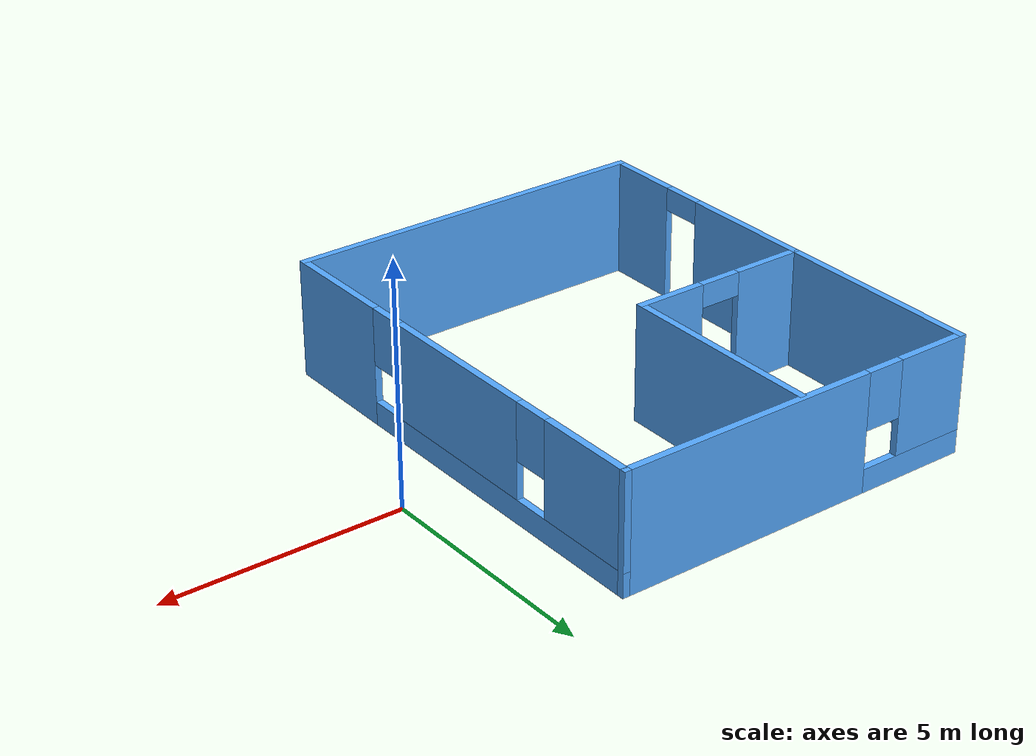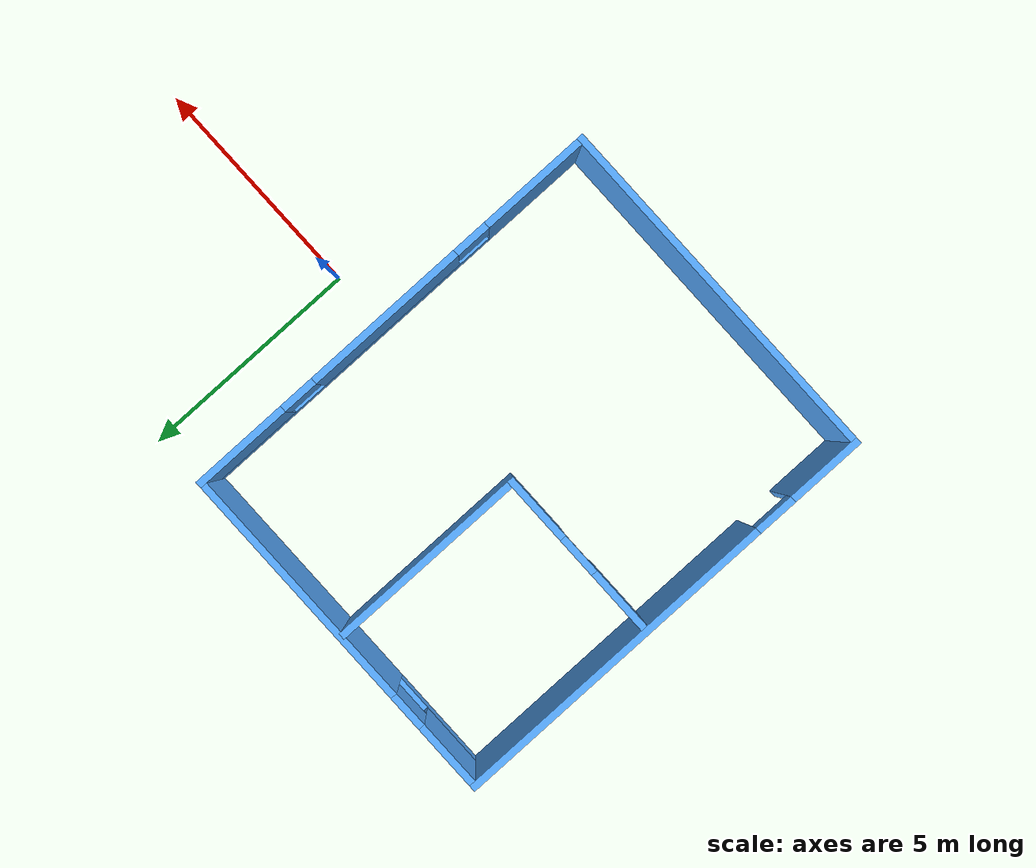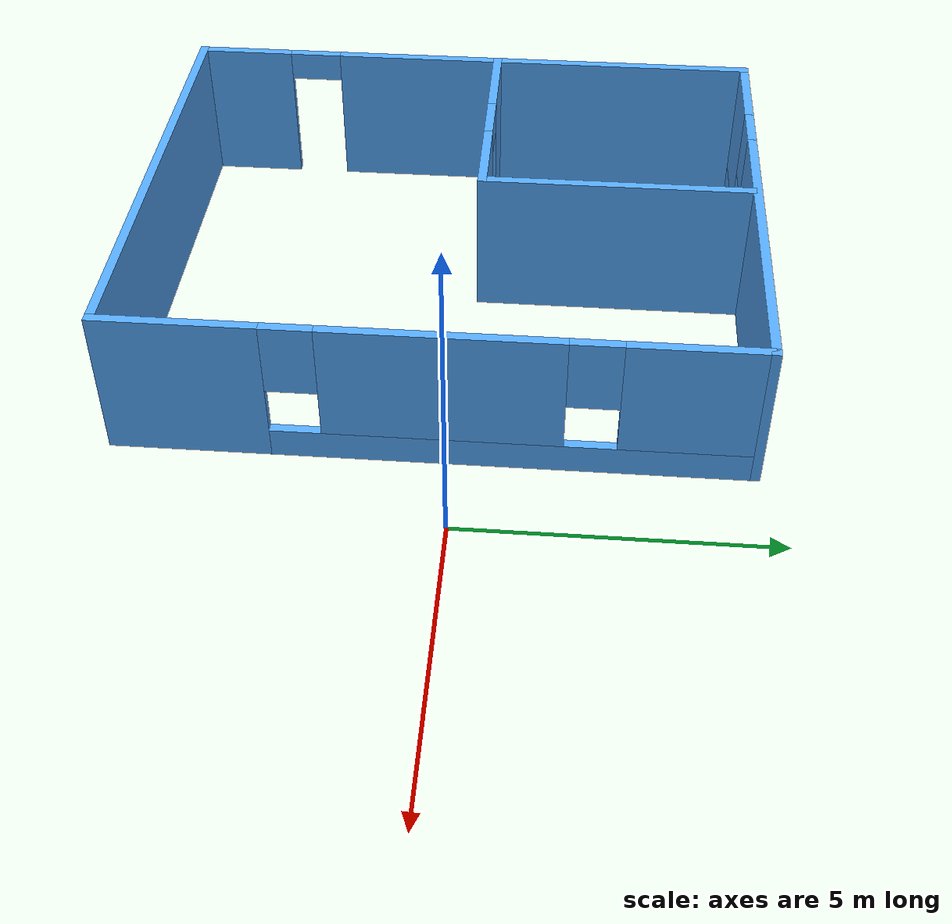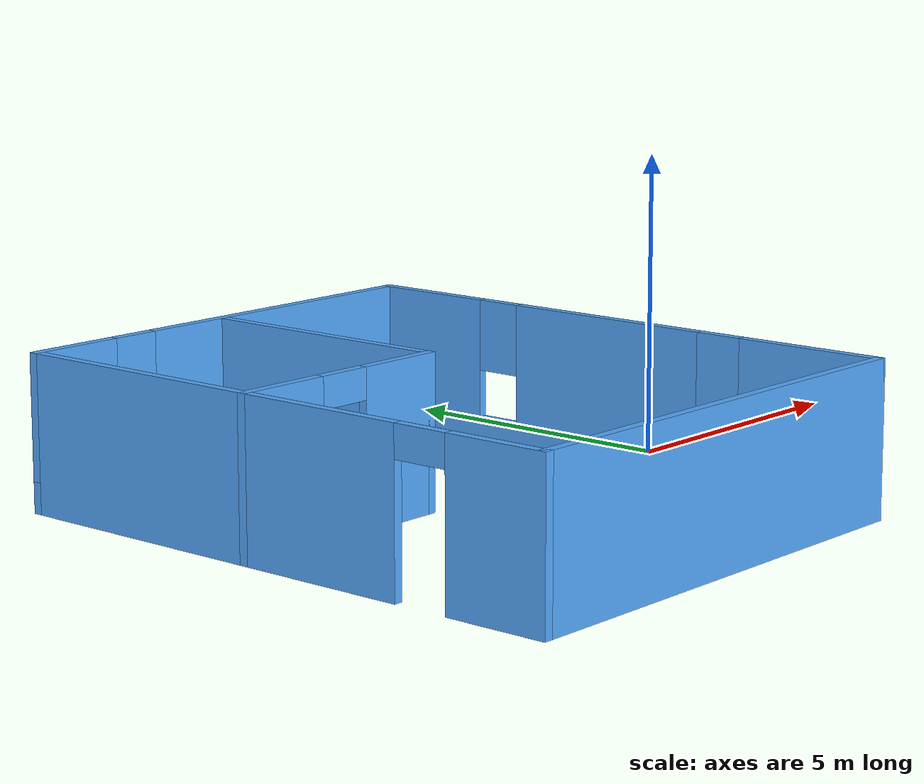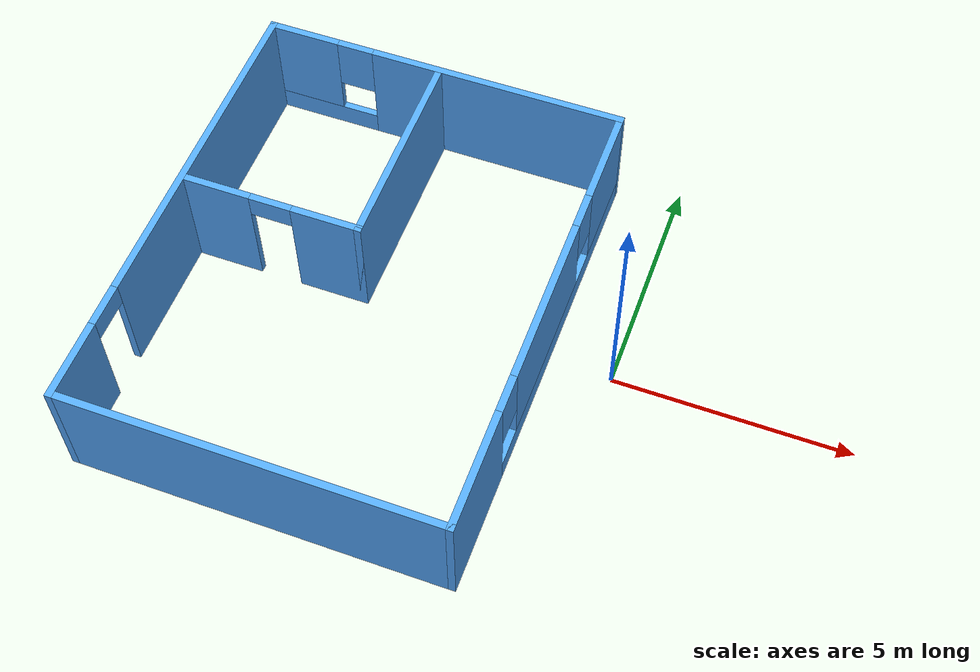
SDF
<?xml version='1.0'?>
<sdf version='1.6'>
  <model name='mybuilding'>
    <pose frame=''>-5.33513 -0.361221 0 0 -0 0</pose>
    <link name='Wall_0'>
      <pose frame=''>-3.925 0 0 0 0 -1.5708</pose>
      <visual name='Wall_0_Visual_0'>
        <pose frame=''>-1.29935 0 1.25 0 -0 0</pose>
        <geometry>
          <box>
            <size>7.4013 0.15 2.5</size>
          </box>
        </geometry>
        <material>
          <script>
            <uri>file://media/materials/scripts/gazebo.material</uri>
            <name>Gazebo/Grey</name>
          </script>
          <ambient>0.333333 0.666667 1 1</ambient>
        </material>
        <meta>
          <layer>0</layer>
        </meta>
      </visual>
      <collision name='Wall_0_Collision_0'>
        <geometry>
          <box>
            <size>7.4013 0.15 2.5</size>
          </box>
        </geometry>
        <pose frame=''>-1.29935 0 1.25 0 -0 0</pose>
      </collision>
      <visual name='Wall_0_Visual_1'>
        <pose frame=''>4.15065 0 1.25 0 -0 0</pose>
        <geometry>
          <box>
            <size>1.6987 0.15 2.5</size>
          </box>
        </geometry>
        <material>
          <script>
            <uri>file://media/materials/scripts/gazebo.material</uri>
            <name>Gazebo/Grey</name>
          </script>
          <ambient>0.333333 0.666667 1 1</ambient>
        </material>
        <meta>
          <layer>0</layer>
        </meta>
      </visual>
      <collision name='Wall_0_Collision_1'>
        <geometry>
          <box>
            <size>1.6987 0.15 2.5</size>
          </box>
        </geometry>
        <pose frame=''>4.15065 0 1.25 0 -0 0</pose>
      </collision>
      <visual name='Wall_0_Visual_2'>
        <pose frame=''>2.8513 0 2.25 0 -0 0</pose>
        <geometry>
          <box>
            <size>0.9 0.15 0.5</size>
          </box>
        </geometry>
        <material>
          <script>
            <uri>file://media/materials/scripts/gazebo.material</uri>
            <name>Gazebo/Grey</name>
          </script>
          <ambient>0.333333 0.666667 1 1</ambient>
        </material>
        <meta>
          <layer>0</layer>
        </meta>
      </visual>
      <collision name='Wall_0_Collision_2'>
        <geometry>
          <box>
            <size>0.9 0.15 0.5</size>
          </box>
        </geometry>
        <pose frame=''>2.8513 0 2.25 0 -0 0</pose>
      </collision>
    </link>
    <link name='Wall_1'>
      <collision name='Wall_1_Collision'>
        <geometry>
          <box>
            <size>8 0.15 2.5</size>
          </box>
        </geometry>
        <pose frame=''>0 0 1.25 0 -0 0</pose>
      </collision>
      <visual name='Wall_1_Visual'>
        <pose frame=''>0 0 1.25 0 -0 0</pose>
        <geometry>
          <box>
            <size>8 0.15 2.5</size>
          </box>
        </geometry>
        <material>
          <script>
            <uri>file://media/materials/scripts/gazebo.material</uri>
            <name>Gazebo/Grey</name>
          </script>
          <ambient>0.333333 0.666667 1 1</ambient>
        </material>
        <meta>
          <layer>0</layer>
        </meta>
      </visual>
      <pose frame=''>0 -4.925 0 0 -0 0</pose>
    </link>
    <link name='Wall_11'>
      <pose frame=''>-2 0.4814 0 0 -0 0</pose>
      <visual name='Wall_11_Visual_0'>
        <pose frame=''>-1.20885 0 1.25 0 -0 0</pose>
        <geometry>
          <box>
            <size>1.5823 0.15 2.5</size>
          </box>
        </geometry>
        <material>
          <script>
            <uri>file://media/materials/scripts/gazebo.material</uri>
            <name>Gazebo/Grey</name>
          </script>
          <ambient>0.333333 0.666667 1 1</ambient>
        </material>
        <meta>
          <layer>0</layer>
        </meta>
      </visual>
      <collision name='Wall_11_Collision_0'>
        <geometry>
          <box>
            <size>1.5823 0.15 2.5</size>
          </box>
        </geometry>
        <pose frame=''>-1.20885 0 1.25 0 -0 0</pose>
      </collision>
      <visual name='Wall_11_Visual_1'>
        <pose frame=''>1.24115 0 1.25 0 -0 0</pose>
        <geometry>
          <box>
            <size>1.5177 0.15 2.5</size>
          </box>
        </geometry>
        <material>
          <script>
            <uri>file://media/materials/scripts/gazebo.material</uri>
            <name>Gazebo/Grey</name>
          </script>
          <ambient>0.333333 0.666667 1 1</ambient>
        </material>
        <meta>
          <layer>0</layer>
        </meta>
      </visual>
      <collision name='Wall_11_Collision_1'>
        <geometry>
          <box>
            <size>1.5177 0.15 2.5</size>
          </box>
        </geometry>
        <pose frame=''>1.24115 0 1.25 0 -0 0</pose>
      </collision>
      <visual name='Wall_11_Visual_2'>
        <pose frame=''>0.0323 0 2.25 0 -0 0</pose>
        <geometry>
          <box>
            <size>0.9 0.15 0.5</size>
          </box>
        </geometry>
        <material>
          <script>
            <uri>file://media/materials/scripts/gazebo.material</uri>
            <name>Gazebo/Grey</name>
          </script>
          <ambient>0.333333 0.666667 1 1</ambient>
        </material>
        <meta>
          <layer>0</layer>
        </meta>
      </visual>
      <collision name='Wall_11_Collision_2'>
        <geometry>
          <box>
            <size>0.9 0.15 0.5</size>
          </box>
        </geometry>
        <pose frame=''>0.0323 0 2.25 0 -0 0</pose>
      </collision>
    </link>
    <link name='Wall_12'>
      <collision name='Wall_12_Collision'>
        <geometry>
          <box>
            <size>4.5 0.15 2.5</size>
          </box>
        </geometry>
        <pose frame=''>0 0 1.25 0 -0 0</pose>
      </collision>
      <visual name='Wall_12_Visual'>
        <pose frame=''>0 0 1.25 0 -0 0</pose>
        <geometry>
          <box>
            <size>4.5 0.15 2.5</size>
          </box>
        </geometry>
        <material>
          <script>
            <uri>file://media/materials/scripts/gazebo.material</uri>
            <name>Gazebo/Grey</name>
          </script>
          <ambient>0.333333 0.666667 1 1</ambient>
        </material>
        <meta>
          <layer>0</layer>
        </meta>
      </visual>
      <pose frame=''>-0.075 2.6564 0 0 -0 1.5708</pose>
    </link>
    <link name='Wall_2'>
      <pose frame=''>3.925 0 0 0 -0 1.5708</pose>
      <visual name='Wall_2_Visual_0'>
        <pose frame=''>-3.7289 0 1.25 0 -0 0</pose>
        <geometry>
          <box>
            <size>2.5422 0.15 2.5</size>
          </box>
        </geometry>
        <material>
          <script>
            <uri>file://media/materials/scripts/gazebo.material</uri>
            <name>Gazebo/Grey</name>
          </script>
          <ambient>0.333333 0.666667 1 1</ambient>
        </material>
        <meta>
          <layer>0</layer>
        </meta>
      </visual>
      <collision name='Wall_2_Collision_0'>
        <geometry>
          <box>
            <size>2.5422 0.15 2.5</size>
          </box>
        </geometry>
        <pose frame=''>-3.7289 0 1.25 0 -0 0</pose>
      </collision>
      <visual name='Wall_2_Visual_1'>
        <pose frame=''>1.2711 0 0.25 0 -0 0</pose>
        <geometry>
          <box>
            <size>7.4578 0.15 0.5</size>
          </box>
        </geometry>
        <material>
          <script>
            <uri>file://media/materials/scripts/gazebo.material</uri>
            <name>Gazebo/Grey</name>
          </script>
          <ambient>0.333333 0.666667 1 1</ambient>
        </material>
        <meta>
          <layer>0</layer>
        </meta>
      </visual>
      <collision name='Wall_2_Collision_1'>
        <geometry>
          <box>
            <size>7.4578 0.15 0.5</size>
          </box>
        </geometry>
        <pose frame=''>1.2711 0 0.25 0 -0 0</pose>
      </collision>
      <visual name='Wall_2_Visual_2'>
        <pose frame=''>0.177225 0 1.5 0 -0 0</pose>
        <geometry>
          <box>
            <size>3.67005 0.15 2</size>
          </box>
        </geometry>
        <material>
          <script>
            <uri>file://media/materials/scripts/gazebo.material</uri>
            <name>Gazebo/Grey</name>
          </script>
          <ambient>0.333333 0.666667 1 1</ambient>
        </material>
        <meta>
          <layer>0</layer>
        </meta>
      </visual>
      <collision name='Wall_2_Collision_2'>
        <geometry>
          <box>
            <size>3.67005 0.15 2</size>
          </box>
        </geometry>
        <pose frame=''>0.177225 0 1.5 0 -0 0</pose>
      </collision>
      <visual name='Wall_2_Visual_3'>
        <pose frame=''>3.90612 0 1.5 0 -0 0</pose>
        <geometry>
          <box>
            <size>2.18775 0.15 2</size>
          </box>
        </geometry>
        <material>
          <script>
            <uri>file://media/materials/scripts/gazebo.material</uri>
            <name>Gazebo/Grey</name>
          </script>
          <ambient>0.333333 0.666667 1 1</ambient>
        </material>
        <meta>
          <layer>0</layer>
        </meta>
      </visual>
      <collision name='Wall_2_Collision_3'>
        <geometry>
          <box>
            <size>2.18775 0.15 2</size>
          </box>
        </geometry>
        <pose frame=''>3.90612 0 1.5 0 -0 0</pose>
      </collision>
      <visual name='Wall_2_Visual_4'>
        <pose frame=''>-2.0578 0 1.9 0 -0 0</pose>
        <geometry>
          <box>
            <size>0.8 0.15 1.2</size>
          </box>
        </geometry>
        <material>
          <script>
            <uri>file://media/materials/scripts/gazebo.material</uri>
            <name>Gazebo/Grey</name>
          </script>
          <ambient>0.333333 0.666667 1 1</ambient>
        </material>
        <meta>
          <layer>0</layer>
        </meta>
      </visual>
      <collision name='Wall_2_Collision_4'>
        <geometry>
          <box>
            <size>0.8 0.15 1.2</size>
          </box>
        </geometry>
        <pose frame=''>-2.0578 0 1.9 0 -0 0</pose>
      </collision>
      <visual name='Wall_2_Visual_5'>
        <pose frame=''>2.41225 0 1.9 0 -0 0</pose>
        <geometry>
          <box>
            <size>0.8 0.15 1.2</size>
          </box>
        </geometry>
        <material>
          <script>
            <uri>file://media/materials/scripts/gazebo.material</uri>
            <name>Gazebo/Grey</name>
          </script>
          <ambient>0.333333 0.666667 1 1</ambient>
        </material>
        <meta>
          <layer>0</layer>
        </meta>
      </visual>
      <collision name='Wall_2_Collision_5'>
        <geometry>
          <box>
            <size>0.8 0.15 1.2</size>
          </box>
        </geometry>
        <pose frame=''>2.41225 0 1.9 0 -0 0</pose>
      </collision>
    </link>
    <link name='Wall_3'>
      <pose frame=''>0 4.925 0 0 -0 3.14159</pose>
      <visual name='Wall_3_Visual_0'>
        <pose frame=''>-1.20293 0 1.25 0 -0 0</pose>
        <geometry>
          <box>
            <size>5.59415 0.15 2.5</size>
          </box>
        </geometry>
        <material>
          <script>
            <uri>file://media/materials/scripts/gazebo.material</uri>
            <name>Gazebo/Grey</name>
          </script>
          <ambient>0.333333 0.666667 1 1</ambient>
        </material>
        <meta>
          <layer>0</layer>
        </meta>
      </visual>
      <collision name='Wall_3_Collision_0'>
        <geometry>
          <box>
            <size>5.59415 0.15 2.5</size>
          </box>
        </geometry>
        <pose frame=''>-1.20293 0 1.25 0 -0 0</pose>
      </collision>
      <visual name='Wall_3_Visual_1'>
        <pose frame=''>2.79707 0 0.25 0 -0 0</pose>
        <geometry>
          <box>
            <size>2.40585 0.15 0.5</size>
          </box>
        </geometry>
        <material>
          <script>
            <uri>file://media/materials/scripts/gazebo.material</uri>
            <name>Gazebo/Grey</name>
          </script>
          <ambient>0.333333 0.666667 1 1</ambient>
        </material>
        <meta>
          <layer>0</layer>
        </meta>
      </visual>
      <collision name='Wall_3_Collision_1'>
        <geometry>
          <box>
            <size>2.40585 0.15 0.5</size>
          </box>
        </geometry>
        <pose frame=''>2.79707 0 0.25 0 -0 0</pose>
      </collision>
      <visual name='Wall_3_Visual_2'>
        <pose frame=''>3.19707 0 1.5 0 -0 0</pose>
        <geometry>
          <box>
            <size>1.60585 0.15 2</size>
          </box>
        </geometry>
        <material>
          <script>
            <uri>file://media/materials/scripts/gazebo.material</uri>
            <name>Gazebo/Grey</name>
          </script>
          <ambient>0.333333 0.666667 1 1</ambient>
        </material>
        <meta>
          <layer>0</layer>
        </meta>
      </visual>
      <collision name='Wall_3_Collision_2'>
        <geometry>
          <box>
            <size>1.60585 0.15 2</size>
          </box>
        </geometry>
        <pose frame=''>3.19707 0 1.5 0 -0 0</pose>
      </collision>
      <visual name='Wall_3_Visual_3'>
        <pose frame=''>1.99415 0 1.9 0 -0 0</pose>
        <geometry>
          <box>
            <size>0.8 0.15 1.2</size>
          </box>
        </geometry>
        <material>
          <script>
            <uri>file://media/materials/scripts/gazebo.material</uri>
            <name>Gazebo/Grey</name>
          </script>
          <ambient>0.333333 0.666667 1 1</ambient>
        </material>
        <meta>
          <layer>0</layer>
        </meta>
      </visual>
      <collision name='Wall_3_Collision_3'>
        <geometry>
          <box>
            <size>0.8 0.15 1.2</size>
          </box>
        </geometry>
        <pose frame=''>1.99415 0 1.9 0 -0 0</pose>
      </collision>
    </link>
    <static>1</static>
  </model>
</sdf>
